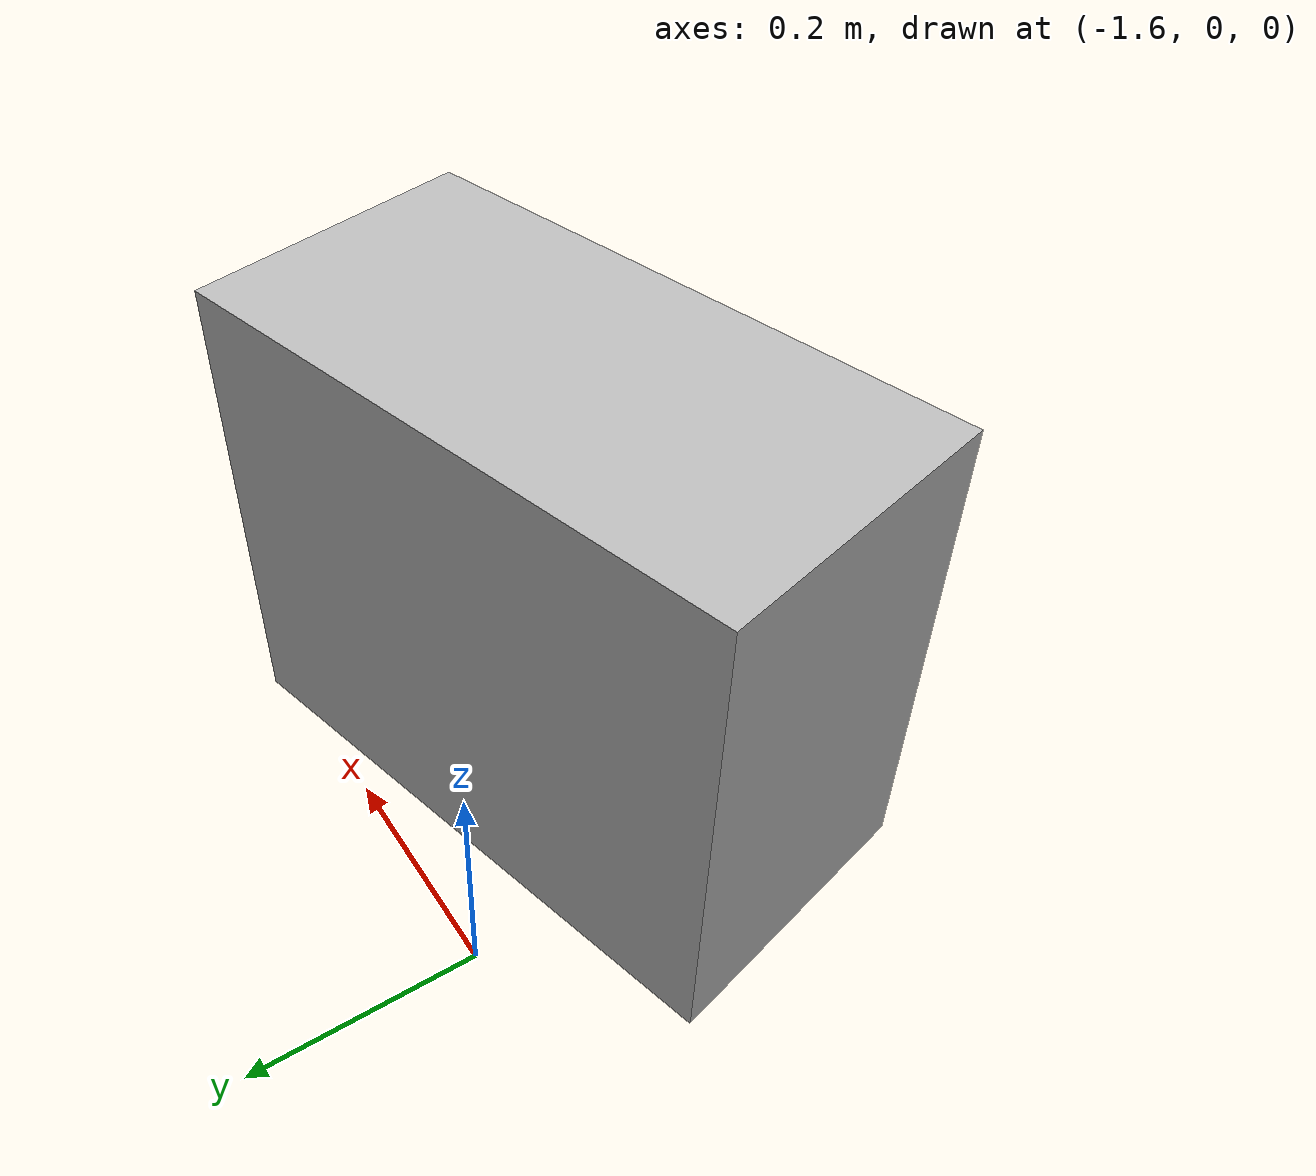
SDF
<?xml version='1.0'?>
  <sdf version='1.6'>
    <model name="Object1">
      <static>false</static>

      <link name='cube'>
        <pose>-1.35 -0.24 0.1 0 0 0.25</pose>

        <collision name='collision'>
          <geometry>
            <box>
              <size>.6 .3 .5</size>
            </box>
          </geometry>
        </collision>

        <surface>
          <friction>
            <ode>
              <mu>1</mu>
              <mu2>1</mu2>
              <slip1>1.0</slip1>
              <slip2>1.0</slip2>
            </ode>
          </friction>
        </surface>

        <visual name='visual'>
          <geometry>
            <box>
              <size>.6 .3 .5</size>
            </box>
          </geometry>
        </visual>
      </link>

    </model>
  </sdf>
